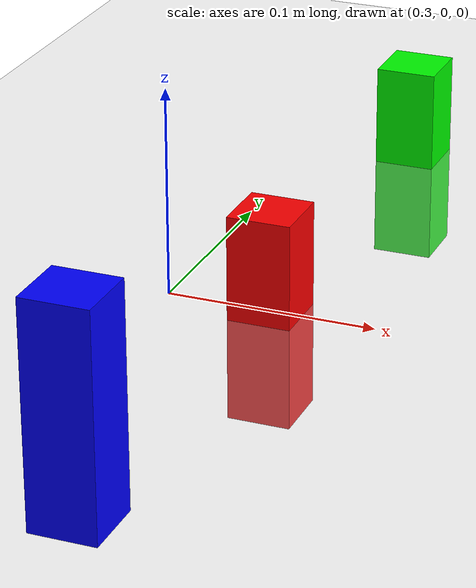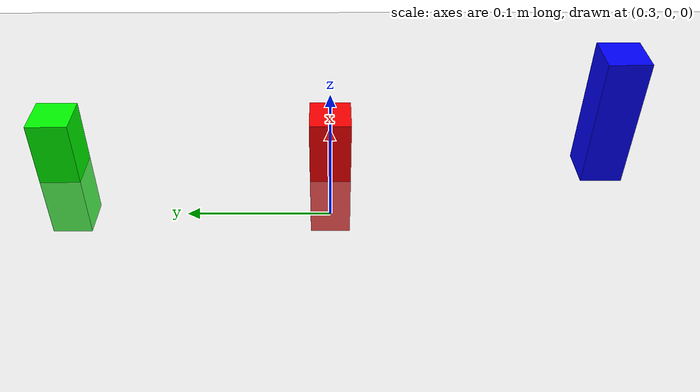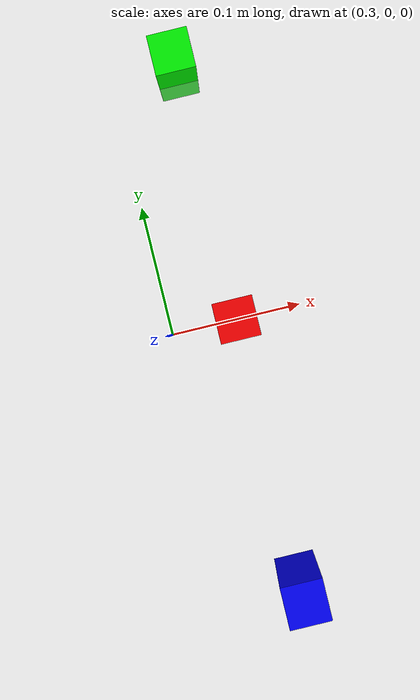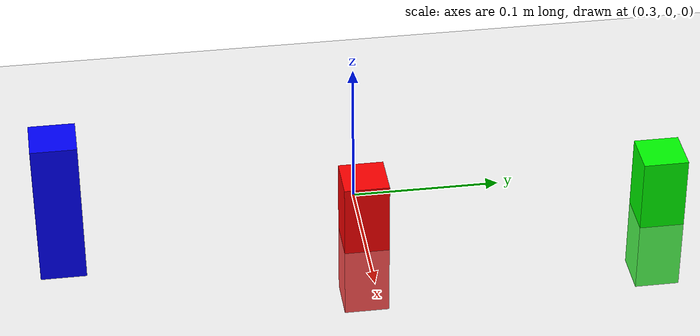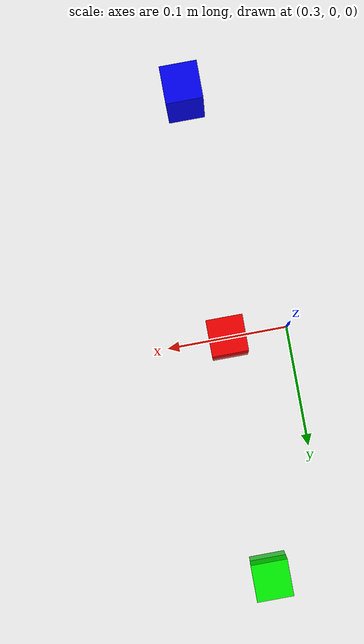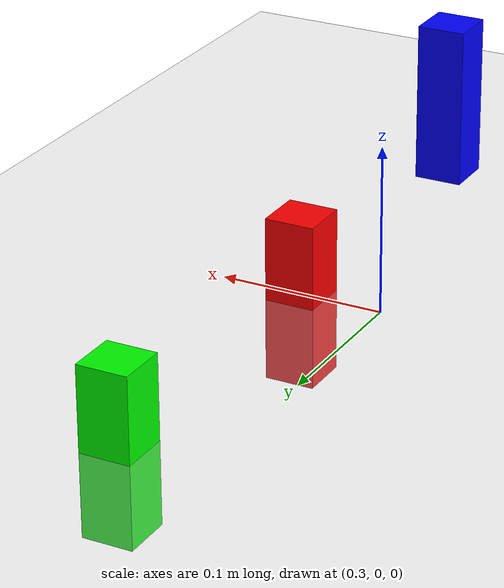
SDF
<sdf version='1.9'>
  <world name='empty_world'>
    <gravity>0 0 -9.8</gravity>
    <physics type='ode'>
      <max_step_size>0.001</max_step_size>
      <real_time_factor>1</real_time_factor>
      <real_time_update_rate>1000</real_time_update_rate>
    </physics>

    <include>
      <uri>https://fuel.gazebosim.org/1.0/OpenRobotics/models/Ground Plane</uri>
    </include>
    <include>
      <uri>https://fuel.gazebosim.org/1.0/OpenRobotics/models/Sun</uri>
    </include>

    <model name="red_box">
      <link name="red_link">
        <pose>0.35 0.0 0.0 0 0 0</pose>
        <collision name="red_collision">
          <geometry><box><size>0.03 0.03 0.1</size></box></geometry>
        </collision>
        <visual name="red_visual">
          <geometry><box><size>0.03 0.03 0.1</size></box></geometry>
          <material><ambient>1 0 0 1</ambient><diffuse>1 0 0 1</diffuse></material>
        </visual>
      </link>
    </model>

    <model name="green_box">
      <link name="green_link">
        <pose>0.35 0.2 0.00 0 0 0</pose>
        <collision name="green_collision">
          <geometry><box><size>0.03 0.03 0.1</size></box></geometry>
        </collision>
        <visual name="green_visual">
          <geometry><box><size>0.03 0.03 0.1</size></box></geometry>
          <material><ambient>0 1 0 1</ambient><diffuse>0 1 0 1</diffuse></material>
        </visual>
      </link>
    </model>

    <model name="blue_box">
      <link name="blue_link">
        <pose>0.35 -0.2 0.05 0 0 0</pose>
        <collision name="blue_collision">
          <geometry><box><size>0.03 0.03 0.1</size></box></geometry>
        </collision>
        <visual name="blue_visual">
          <geometry><box><size>0.03 0.03 0.1</size></box></geometry>
          <material><ambient>0 0 1 1</ambient><diffuse>0 0 1 1</diffuse></material>
        </visual>
      </link>
    </model>

  </world>
</sdf>
